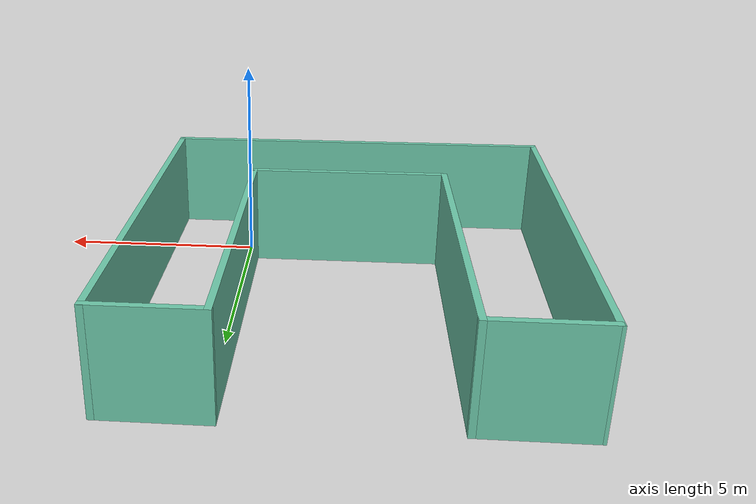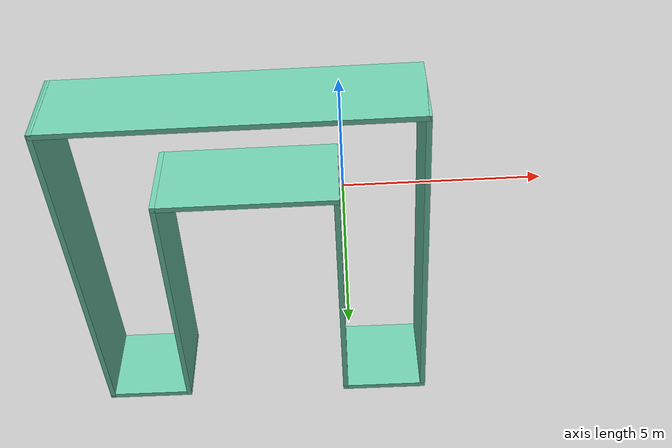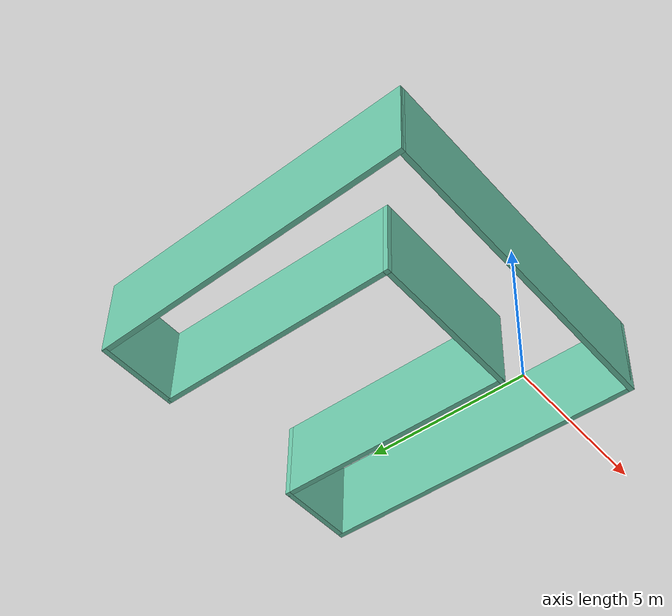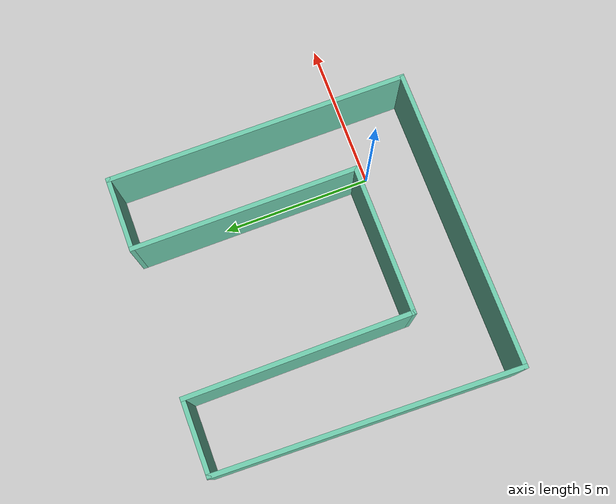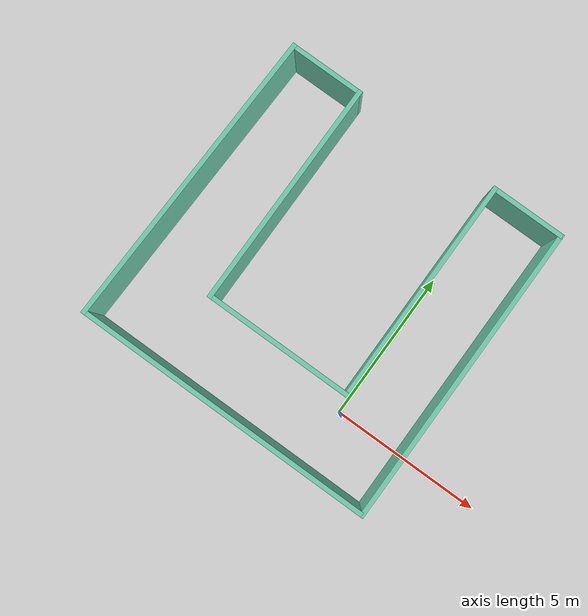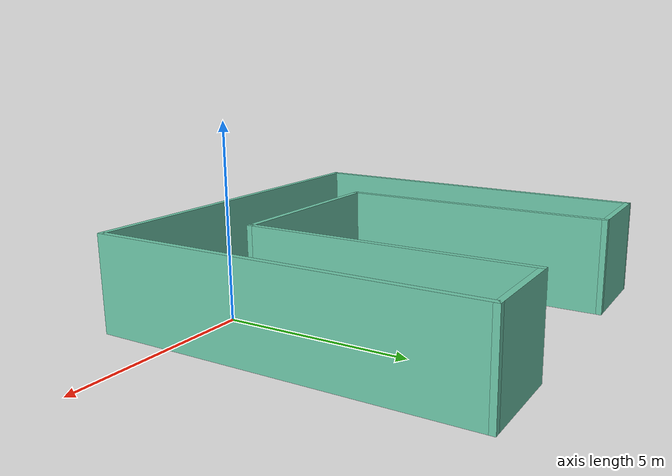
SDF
<?xml version='1.0'?>
<sdf version='1.6'>
  <model name='editor'>
    <pose frame=''>-2.77052 2.99256 0 0 -0 0</pose>
    <link name='Wall_10'>
      <collision name='Wall_10_Collision'>
        <geometry>
          <box>
            <size>7.5 0.15 2.5</size>
          </box>
        </geometry>
        <pose frame=''>0 0 1.25 0 -0 0</pose>
      </collision>
      <visual name='Wall_10_Visual'>
        <pose frame=''>0 0 1.25 0 -0 0</pose>
        <geometry>
          <box>
            <size>7.5 0.15 2.5</size>
          </box>
        </geometry>
        <material>
          <script>
            <uri>file://media/materials/scripts/gazebo.material</uri>
            <name>Gazebo/Grey</name>
          </script>
          <ambient>0.435294 0.796078 0.67451 1</ambient>
        </material>
        <meta>
          <layer>0</layer>
        </meta>
      </visual>
      <pose frame=''>2.58769 1.25 0 0 0 -1.5708</pose>
    </link>
    <link name='Wall_11'>
      <collision name='Wall_11_Collision'>
        <geometry>
          <box>
            <size>5 0.15 2.5</size>
          </box>
        </geometry>
        <pose frame=''>0 0 1.25 0 -0 0</pose>
      </collision>
      <visual name='Wall_11_Visual'>
        <pose frame=''>0 0 1.25 0 -0 0</pose>
        <geometry>
          <box>
            <size>5 0.15 2.5</size>
          </box>
        </geometry>
        <material>
          <script>
            <uri>file://media/materials/scripts/gazebo.material</uri>
            <name>Gazebo/Grey</name>
          </script>
          <ambient>0.435294 0.796078 0.67451 1</ambient>
        </material>
        <meta>
          <layer>0</layer>
        </meta>
      </visual>
      <pose frame=''>0.162689 -2.425 0 0 -0 3.14159</pose>
    </link>
    <link name='Wall_12'>
      <collision name='Wall_12_Collision'>
        <geometry>
          <box>
            <size>7.5 0.15 2.5</size>
          </box>
        </geometry>
        <pose frame=''>0 0 1.25 0 -0 0</pose>
      </collision>
      <visual name='Wall_12_Visual'>
        <pose frame=''>0 0 1.25 0 -0 0</pose>
        <geometry>
          <box>
            <size>7.5 0.15 2.5</size>
          </box>
        </geometry>
        <material>
          <script>
            <uri>file://media/materials/scripts/gazebo.material</uri>
            <name>Gazebo/Grey</name>
          </script>
          <ambient>0.435294 0.796078 0.67451 1</ambient>
        </material>
        <meta>
          <layer>0</layer>
        </meta>
      </visual>
      <pose frame=''>-2.26231 1.25 0 0 -0 1.5708</pose>
    </link>
    <link name='Wall_13'>
      <collision name='Wall_13_Collision'>
        <geometry>
          <box>
            <size>2.5 0.15 2.5</size>
          </box>
        </geometry>
        <pose frame=''>0 0 1.25 0 -0 0</pose>
      </collision>
      <visual name='Wall_13_Visual'>
        <pose frame=''>0 0 1.25 0 -0 0</pose>
        <geometry>
          <box>
            <size>2.5 0.15 2.5</size>
          </box>
        </geometry>
        <material>
          <script>
            <uri>file://media/materials/scripts/gazebo.material</uri>
            <name>Gazebo/Grey</name>
          </script>
          <ambient>0.435294 0.796078 0.67451 1</ambient>
        </material>
        <meta>
          <layer>0</layer>
        </meta>
      </visual>
      <pose frame=''>-3.43731 4.925 0 0 -0 3.14159</pose>
    </link>
    <link name='Wall_14'>
      <collision name='Wall_14_Collision'>
        <geometry>
          <box>
            <size>10.0046 0.15 2.5</size>
          </box>
        </geometry>
        <pose frame=''>0 0 1.25 0 -0 0</pose>
      </collision>
      <visual name='Wall_14_Visual'>
        <pose frame=''>0 0 1.25 0 -0 0</pose>
        <geometry>
          <box>
            <size>10.0046 0.15 2.5</size>
          </box>
        </geometry>
        <material>
          <script>
            <uri>file://media/materials/scripts/gazebo.material</uri>
            <name>Gazebo/Grey</name>
          </script>
          <ambient>0.435294 0.796078 0.67451 1</ambient>
        </material>
        <meta>
          <layer>0</layer>
        </meta>
      </visual>
      <pose frame=''>-4.78544 0 0 0 0 -1.60124</pose>
    </link>
    <link name='Wall_7'>
      <collision name='Wall_7_Collision'>
        <geometry>
          <box>
            <size>10 0.15 2.5</size>
          </box>
        </geometry>
        <pose frame=''>0 0 1.25 0 -0 0</pose>
      </collision>
      <visual name='Wall_7_Visual'>
        <pose frame=''>0 0 1.25 0 -0 0</pose>
        <geometry>
          <box>
            <size>10 0.15 2.5</size>
          </box>
        </geometry>
        <material>
          <script>
            <uri>file://media/materials/scripts/gazebo.material</uri>
            <name>Gazebo/Grey</name>
          </script>
          <ambient>0.435294 0.796078 0.67451 1</ambient>
        </material>
        <meta>
          <layer>0</layer>
        </meta>
      </visual>
      <pose frame=''>0.012689 -4.925 0 0 -0 0</pose>
    </link>
    <link name='Wall_8'>
      <collision name='Wall_8_Collision'>
        <geometry>
          <box>
            <size>10 0.15 2.5</size>
          </box>
        </geometry>
        <pose frame=''>0 0 1.25 0 -0 0</pose>
      </collision>
      <visual name='Wall_8_Visual'>
        <pose frame=''>0 0 1.25 0 -0 0</pose>
        <geometry>
          <box>
            <size>10 0.15 2.5</size>
          </box>
        </geometry>
        <material>
          <script>
            <uri>file://media/materials/scripts/gazebo.material</uri>
            <name>Gazebo/Grey</name>
          </script>
          <ambient>0.435294 0.796078 0.67451 1</ambient>
        </material>
        <meta>
          <layer>0</layer>
        </meta>
      </visual>
      <pose frame=''>4.93769 0 0 0 -0 1.5708</pose>
    </link>
    <link name='Wall_9'>
      <collision name='Wall_9_Collision'>
        <geometry>
          <box>
            <size>2.5 0.15 2.5</size>
          </box>
        </geometry>
        <pose frame=''>0 0 1.25 0 -0 0</pose>
      </collision>
      <visual name='Wall_9_Visual'>
        <pose frame=''>0 0 1.25 0 -0 0</pose>
        <geometry>
          <box>
            <size>2.5 0.15 2.5</size>
          </box>
        </geometry>
        <material>
          <script>
            <uri>file://media/materials/scripts/gazebo.material</uri>
            <name>Gazebo/Grey</name>
          </script>
          <ambient>0.435294 0.796078 0.67451 1</ambient>
        </material>
        <meta>
          <layer>0</layer>
        </meta>
      </visual>
      <pose frame=''>3.76269 4.925 0 0 -0 3.14159</pose>
    </link>
    <static>1</static>
  </model>
</sdf>
